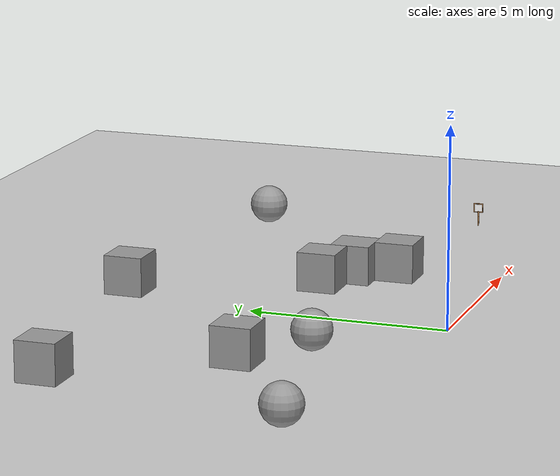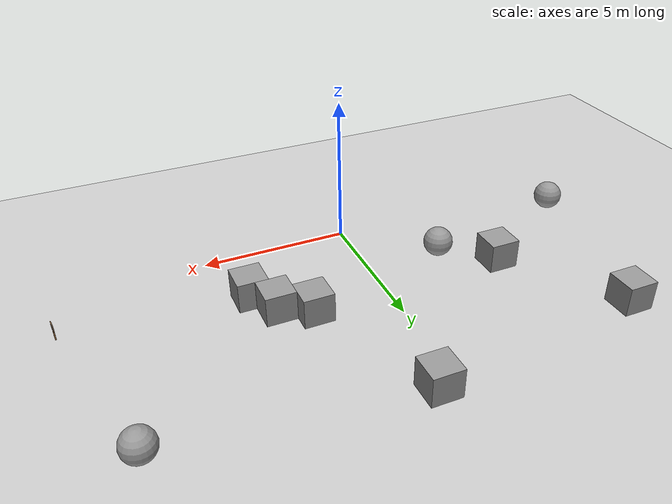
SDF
<sdf version="1.6">
 <world name="default">
  <model name="ground_plane">
   <static>1</static>
   <link name="link">
    <collision name="collision">
     <geometry><plane><normal>0 0 1</normal><size>100 100</size></plane></geometry>
     <surface>
      <contact><collide_bitmask>65535</collide_bitmask></contact>
      <friction><ode><mu>100</mu><mu2>50</mu2></ode></friction>
     </surface>
    </collision>
    <visual name="visual">
     <cast_shadows>0</cast_shadows>
     <geometry><plane><normal>0 0 1</normal><size>100 100</size></plane></geometry>
     <material>
      <script><uri>file://media/materials/scripts/gazebo.material</uri><name>Gazebo/Grey</name></script>
     </material>
    </visual>
   </link>
  </model>
  <model name="unit_box_0">
   <pose>-4.10124 3.81358 0.499995 0 1e-05 0</pose>
   <link name="link">
    <inertial>
     <mass>1</mass>
     <inertia>
      <ixx>0.166667</ixx>
      <ixy>0</ixy>
      <ixz>0</ixz>
      <iyy>0.166667</iyy>
      <iyz>0</iyz>
      <izz>0.166667</izz>
     </inertia>
    </inertial>
    <collision name="collision"><geometry><box><size>1 1 1</size></box></geometry></collision>
    <visual name="visual">
     <geometry><box><size>1 1 1</size></box></geometry>
     <material>
      <script><name>Gazebo/Grey</name><uri>file://media/materials/scripts/gazebo.material</uri></script>
     </material>
    </visual>
   </link>
  </model>
  <model name="unit_sphere_0">
   <pose>-2.55111 2.54212 0.5 0 -0 0</pose>
   <link name="link">
    <inertial>
     <mass>1</mass>
     <inertia><ixx>0.1</ixx><ixy>0</ixy><ixz>0</ixz><iyy>0.1</iyy><iyz>0</iyz><izz>0.1</izz></inertia>
    </inertial>
    <collision name="collision"><geometry><sphere><radius>0.5</radius></sphere></geometry></collision>
    <visual name="visual">
     <geometry><sphere><radius>0.5</radius></sphere></geometry>
     <material>
      <script><name>Gazebo/Grey</name><uri>file://media/materials/scripts/gazebo.material</uri></script>
     </material>
    </visual>
   </link>
  </model>
  <model name="unit_box_1">
   <pose>2.59734 4.02787 0.499995 0 1e-05 0.007831</pose>
   <link name="link">
    <inertial>
     <mass>1</mass>
     <inertia>
      <ixx>0.166667</ixx>
      <ixy>0</ixy>
      <ixz>0</ixz>
      <iyy>0.166667</iyy>
      <iyz>0</iyz>
      <izz>0.166667</izz>
     </inertia>
    </inertial>
    <collision name="collision"><geometry><box><size>1 1 1</size></box></geometry></collision>
    <visual name="visual">
     <geometry><box><size>1 1 1</size></box></geometry>
     <material>
      <script><name>Gazebo/Grey</name><uri>file://media/materials/scripts/gazebo.material</uri></script>
     </material>
    </visual>
   </link>
  </model>
  <model name="unit_box_2">
   <pose>4.16233 2.47668 0.499995 -1e-05 -0 0.008036</pose>
   <link name="link">
    <inertial>
     <mass>1</mass>
     <inertia>
      <ixx>0.166667</ixx>
      <ixy>0</ixy>
      <ixz>0</ixz>
      <iyy>0.166667</iyy>
      <iyz>0</iyz>
      <izz>0.166667</izz>
     </inertia>
    </inertial>
    <collision name="collision"><geometry><box><size>1 1 1</size></box></geometry></collision>
    <visual name="visual">
     <geometry><box><size>1 1 1</size></box></geometry>
     <material>
      <script><name>Gazebo/Grey</name><uri>file://media/materials/scripts/gazebo.material</uri></script>
     </material>
    </visual>
   </link>
  </model>
  <model name="unit_box_4">
   <pose>-6.61088 7.51602 0.499995 0 1e-05 0</pose>
   <link name="link">
    <inertial>
     <mass>1</mass>
     <inertia>
      <ixx>0.166667</ixx>
      <ixy>0</ixy>
      <ixz>0</ixz>
      <iyy>0.166667</iyy>
      <iyz>0</iyz>
      <izz>0.166667</izz>
     </inertia>
    </inertial>
    <collision name="collision"><geometry><box><size>1 1 1</size></box></geometry></collision>
    <visual name="visual">
     <geometry><box><size>1 1 1</size></box></geometry>
     <material>
      <script><name>Gazebo/Grey</name><uri>file://media/materials/scripts/gazebo.material</uri></script>
     </material>
    </visual>
   </link>
  </model>
  <model name="unit_sphere_3">
   <pose>8.48345 7.53587 0.5 0 -0 0</pose>
   <link name="link">
    <inertial>
     <mass>1</mass>
     <inertia><ixx>0.1</ixx><ixy>0</ixy><ixz>0</ixz><iyy>0.1</iyy><iyz>0</iyz><izz>0.1</izz></inertia>
    </inertial>
    <collision name="collision"><geometry><sphere><radius>0.5</radius></sphere></geometry></collision>
    <visual name="visual">
     <geometry><sphere><radius>0.5</radius></sphere></geometry>
     <material>
      <script><name>Gazebo/Grey</name><uri>file://media/materials/scripts/gazebo.material</uri></script>
     </material>
    </visual>
   </link>
  </model>
  <model name="unit_box_5">
   <pose>0.717745 8.45941 0.499995 0 1e-05 -1.1e-05</pose>
   <link name="link">
    <inertial>
     <mass>1</mass>
     <inertia>
      <ixx>0.166667</ixx>
      <ixy>0</ixy>
      <ixz>0</ixz>
      <iyy>0.166667</iyy>
      <iyz>0</iyz>
      <izz>0.166667</izz>
     </inertia>
    </inertial>
    <collision name="collision"><geometry><box><size>1 1 1</size></box></geometry></collision>
    <visual name="visual">
     <geometry><box><size>1 1 1</size></box></geometry>
     <material>
      <script><name>Gazebo/Grey</name><uri>file://media/materials/scripts/gazebo.material</uri></script>
     </material>
    </visual>
   </link>
  </model>
  <model name="unit_box_6">
   <pose>3.60177 3.47234 0.499995 0 -1e-05 0.007921</pose>
   <link name="link">
    <inertial>
     <mass>1</mass>
     <inertia>
      <ixx>0.166667</ixx>
      <ixy>0</ixy>
      <ixz>0</ixz>
      <iyy>0.166667</iyy>
      <iyz>0</iyz>
      <izz>0.166667</izz>
     </inertia>
    </inertial>
    <collision name="collision"><geometry><box><size>1 1 1</size></box></geometry></collision>
    <visual name="visual">
     <geometry><box><size>1 1 1</size></box></geometry>
     <material>
      <script><name>Gazebo/Grey</name><uri>file://media/materials/scripts/gazebo.material</uri></script>
     </material>
    </visual>
   </link>
  </model>
  <model name="unit_sphere_1">
   <pose>-7.97349 1.37373 0.5 0 -0 0</pose>
   <link name="link">
    <inertial>
     <mass>1</mass>
     <inertia><ixx>0.1</ixx><ixy>0</ixy><ixz>0</ixz><iyy>0.1</iyy><iyz>0</iyz><izz>0.1</izz></inertia>
    </inertial>
    <collision name="collision"><geometry><sphere><radius>0.5</radius></sphere></geometry></collision>
    <visual name="visual">
     <geometry><sphere><radius>0.5</radius></sphere></geometry>
     <material>
      <script><name>Gazebo/Grey</name><uri>file://media/materials/scripts/gazebo.material</uri></script>
     </material>
    </visual>
   </link>
  </model>
  <model name="aruco_wood_thin_clone_0">
   <link name="link_0">
    <inertial>
     <mass>1</mass>
     <inertia><ixx>0.145833</ixx><ixy>0</ixy><ixz>0</ixz><iyy>0.145833</iyy><iyz>0</iyz><izz>0.125</izz></inertia>
    </inertial>
    <pose>-0.017932 0.660168 -0.097628 0 -0 0</pose>
    <visual name="visual">
     <geometry><cylinder><radius>0.02</radius><length>0.4</length></cylinder></geometry>
     <material>
      <lighting>1</lighting>
      <script><uri>file://media/materials/scripts/gazebo.material</uri><name>Gazebo/Wood</name></script>
      <shader type="vertex"><normal_map>__default__</normal_map></shader>
      <ambient>0.3 0.3 0.3 1</ambient>
      <diffuse>0.7 0.7 0.7 1</diffuse>
      <specular>0.01 0.01 0.01 1</specular>
      <emissive>0 0 0 1</emissive>
     </material>
    </visual>
    <collision name="collision">
     <geometry><cylinder><radius>0.02</radius><length>0.4</length></cylinder></geometry>
     <surface>
      <friction>
       <ode><mu>1</mu><mu2>1</mu2><fdir1>0 0 0</fdir1><slip1>0</slip1><slip2>0</slip2></ode>
       <torsional>
        <coefficient>1</coefficient>
        <patch_radius>0</patch_radius>
        <surface_radius>0</surface_radius>
        <use_patch_radius>1</use_patch_radius>
        <ode><slip>0</slip></ode>
       </torsional>
      </friction>
      <bounce><restitution_coefficient>0</restitution_coefficient><threshold>1e+06</threshold></bounce>
      <contact>
       <collide_without_contact>0</collide_without_contact>
       <collide_without_contact_bitmask>1</collide_without_contact_bitmask>
       <collide_bitmask>1</collide_bitmask>
       <ode>
        <soft_cfm>0</soft_cfm>
        <soft_erp>0.2</soft_erp>
        <kp>1e+13</kp>
        <kd>1</kd>
        <max_vel>0.01</max_vel>
        <min_depth>0</min_depth>
       </ode>
       <bullet>
        <split_impulse>1</split_impulse>
        <split_impulse_penetration_threshold>-0.01</split_impulse_penetration_threshold>
        <soft_cfm>0</soft_cfm>
        <soft_erp>0.2</soft_erp>
        <kp>1e+13</kp>
        <kd>1</kd>
       </bullet>
      </contact>
     </surface>
    </collision>
   </link>
   <link name="link_1">
    <inertial>
     <mass>1.21407</mass>
     <inertia>
      <ixx>0.00864359</ixx>
      <ixy>0</ixy>
      <ixz>0</ixz>
      <iyy>0.00421539</iyy>
      <iyz>0</iyz>
      <izz>0.00446773</izz>
     </inertia>
    </inertial>
    <pose>-0.025899 0.66382 0.194379 0 -0 0</pose>
    <visual name="visual">
     <geometry><box><size>0.013978 0.209676 0.203642</size></box></geometry>
     <material>
      <script><uri>file://scripts</uri><uri>file://textures</uri><name>aruco/standard_opp</name></script>
      <emissive>0 0 0 1</emissive>
      <shader type="vertex"><normal_map>__default__</normal_map></shader>
      <ambient>1 1 1 1</ambient>
      <diffuse>1 1 1 1</diffuse>
      <specular>0 0 0 1</specular>
     </material>
    </visual>
    <collision name="collision">
     <geometry><box><size>0.013978 0.209676 0.203642</size></box></geometry>
     <surface>
      <friction>
       <ode><mu>1</mu><mu2>1</mu2><fdir1>0 0 0</fdir1><slip1>0</slip1><slip2>0</slip2></ode>
       <torsional>
        <coefficient>1</coefficient>
        <patch_radius>0</patch_radius>
        <surface_radius>0</surface_radius>
        <use_patch_radius>1</use_patch_radius>
        <ode><slip>0</slip></ode>
       </torsional>
      </friction>
      <bounce><restitution_coefficient>0</restitution_coefficient><threshold>1e+06</threshold></bounce>
      <contact>
       <collide_without_contact>0</collide_without_contact>
       <collide_without_contact_bitmask>1</collide_without_contact_bitmask>
       <collide_bitmask>1</collide_bitmask>
       <ode>
        <soft_cfm>0</soft_cfm>
        <soft_erp>0.2</soft_erp>
        <kp>1e+13</kp>
        <kd>1</kd>
        <max_vel>0.01</max_vel>
        <min_depth>0</min_depth>
       </ode>
       <bullet>
        <split_impulse>1</split_impulse>
        <split_impulse_penetration_threshold>-0.01</split_impulse_penetration_threshold>
        <soft_cfm>0</soft_cfm>
        <soft_erp>0.2</soft_erp>
        <kp>1e+13</kp>
        <kd>1</kd>
       </bullet>
      </contact>
     </surface>
    </collision>
   </link>
   <link name="link_1_clone">
    <inertial>
     <mass>0.519809</mass>
     <inertia>
      <ixx>0.00549167</ixx>
      <ixy>0</ixy>
      <ixz>0</ixz>
      <iyy>0.00278045</iyy>
      <iyz>0</iyz>
      <izz>0.00275135</izz>
     </inertia>
    </inertial>
    <pose>-0.015207 0.663184 0.195267 0 -0 0</pose>
    <visual name="visual">
     <geometry><box><size>0.021523 0.251103 0.252437</size></box></geometry>
     <material>
      <script><uri>file://scripts</uri><uri>file://textures</uri><name>Gazebo/Wood</name></script>
      <shader type="vertex"><normal_map>__default__</normal_map></shader>
      <ambient>1 1 1 1</ambient>
      <diffuse>1 1 1 1</diffuse>
      <specular>0 0 0 1</specular>
      <emissive>0 0 0 1</emissive>
     </material>
    </visual>
    <collision name="collision">
     <geometry><box><size>0.021523 0.251103 0.252437</size></box></geometry>
     <surface>
      <friction>
       <ode><mu>1</mu><mu2>1</mu2><fdir1>0 0 0</fdir1><slip1>0</slip1><slip2>0</slip2></ode>
       <torsional>
        <coefficient>1</coefficient>
        <patch_radius>0</patch_radius>
        <surface_radius>0</surface_radius>
        <use_patch_radius>1</use_patch_radius>
        <ode><slip>0</slip></ode>
       </torsional>
      </friction>
      <bounce><restitution_coefficient>0</restitution_coefficient><threshold>1e+06</threshold></bounce>
      <contact>
       <collide_without_contact>0</collide_without_contact>
       <collide_without_contact_bitmask>1</collide_without_contact_bitmask>
       <collide_bitmask>1</collide_bitmask>
       <ode>
        <soft_cfm>0</soft_cfm>
        <soft_erp>0.2</soft_erp>
        <kp>1e+13</kp>
        <kd>1</kd>
        <max_vel>0.01</max_vel>
        <min_depth>0</min_depth>
       </ode>
       <bullet>
        <split_impulse>1</split_impulse>
        <split_impulse_penetration_threshold>-0.01</split_impulse_penetration_threshold>
        <soft_cfm>0</soft_cfm>
        <soft_erp>0.2</soft_erp>
        <kp>1e+13</kp>
        <kd>1</kd>
       </bullet>
      </contact>
     </surface>
    </collision>
   </link>
   <link name="link_1_clone_0">
    <inertial>
     <mass>0.238009</mass>
     <inertia>
      <ixx>0.00161175</ixx>
      <ixy>0</ixy>
      <ixz>0</ixz>
      <iyy>0.000787067</iyy>
      <iyz>0</iyz>
      <izz>0.000832042</izz>
     </inertia>
    </inertial>
    <pose>-0.00403 0.665261 0.195247 0 -0 0</pose>
    <visual name="visual">
     <geometry><box><size>0.013624 0.204363 0.198738</size></box></geometry>
     <material>
      <script><uri>file://scripts</uri><uri>file://textures</uri><name>aruco/standard_opp</name></script>
      <emissive>0 0 0 1</emissive>
      <shader type="vertex"><normal_map>__default__</normal_map></shader>
      <ambient>1 1 1 1</ambient>
      <diffuse>1 1 1 1</diffuse>
      <specular>0 0 0 1</specular>
     </material>
    </visual>
    <collision name="collision">
     <geometry><box><size>0.013624 0.204363 0.198738</size></box></geometry>
     <surface>
      <friction>
       <ode><mu>1</mu><mu2>1</mu2><fdir1>0 0 0</fdir1><slip1>0</slip1><slip2>0</slip2></ode>
       <torsional>
        <coefficient>1</coefficient>
        <patch_radius>0</patch_radius>
        <surface_radius>0</surface_radius>
        <use_patch_radius>1</use_patch_radius>
        <ode><slip>0</slip></ode>
       </torsional>
      </friction>
      <bounce><restitution_coefficient>0</restitution_coefficient><threshold>1e+06</threshold></bounce>
      <contact>
       <collide_without_contact>0</collide_without_contact>
       <collide_without_contact_bitmask>1</collide_without_contact_bitmask>
       <collide_bitmask>1</collide_bitmask>
       <ode>
        <soft_cfm>0</soft_cfm>
        <soft_erp>0.2</soft_erp>
        <kp>1e+13</kp>
        <kd>1</kd>
        <max_vel>0.01</max_vel>
        <min_depth>0</min_depth>
       </ode>
       <bullet>
        <split_impulse>1</split_impulse>
        <split_impulse_penetration_threshold>-0.01</split_impulse_penetration_threshold>
        <soft_cfm>0</soft_cfm>
        <soft_erp>0.2</soft_erp>
        <kp>1e+13</kp>
        <kd>1</kd>
       </bullet>
      </contact>
     </surface>
    </collision>
   </link>
   <joint name="link_0_JOINT_0" type="fixed">
    <parent>link_0</parent>
    <child>link_1</child>
    <physics>
     <ode><limit><cfm>0</cfm><erp>0.2</erp></limit><suspension><cfm>0</cfm><erp>0.2</erp></suspension></ode>
    </physics>
   </joint>
   <joint name="link_1_JOINT_0_0" type="fixed">
    <parent>link_1</parent>
    <child>link_1_clone_0</child>
    <physics>
     <ode><limit><cfm>0</cfm><erp>0.2</erp></limit><suspension><cfm>0</cfm><erp>0.2</erp></suspension></ode>
    </physics>
   </joint>
   <joint name="link_1_JOINT_0" type="fixed">
    <parent>link_1</parent>
    <child>link_1_clone</child>
    <physics>
     <ode><limit><cfm>0</cfm><erp>0.2</erp></limit><suspension><cfm>0</cfm><erp>0.2</erp></suspension></ode>
    </physics>
   </joint>
   <static>0</static>
   <pose>10.0754 1.32681 0.297646 -4.2e-05 1e-05 0.137773</pose>
  </model>
 </world>
</sdf>
